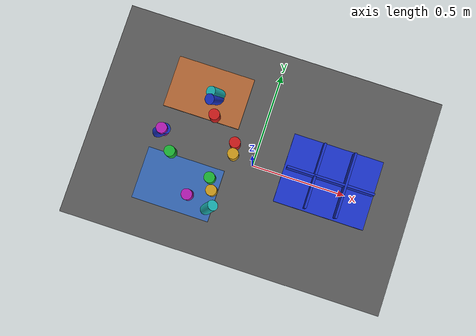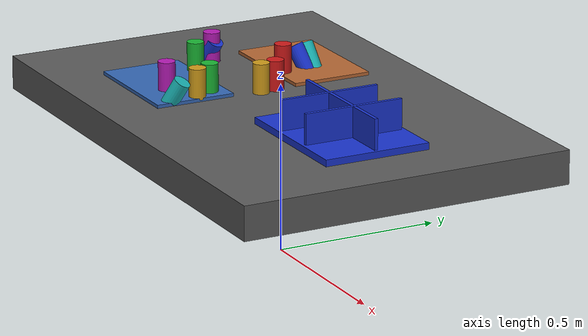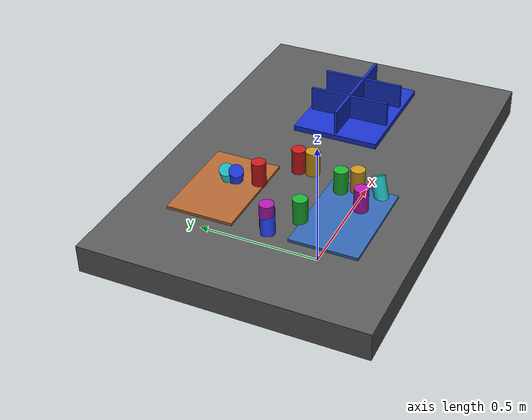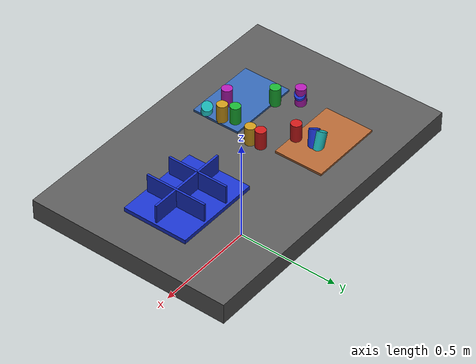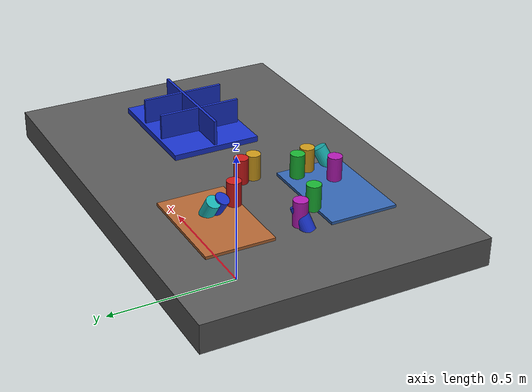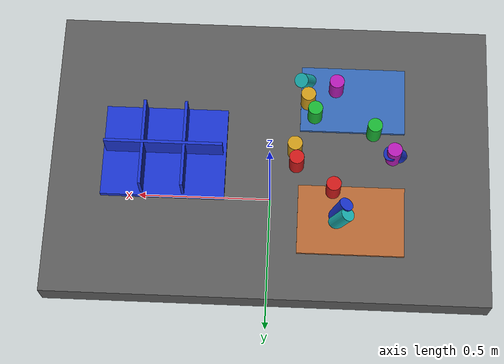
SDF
<?xml version="1.0" ?>
<sdf version="1.9">
  <!-- Standalone M1B scene.  The controller-backed Panda is spawned by the
       existing launch path; this file never alters the frozen M1A cube world. -->
  <world name="industrial_cylinder_v1">
    <physics name="bullet" type="bullet"><max_step_size>0.001</max_step_size><real_time_factor>1.0</real_time_factor></physics>
    <plugin name="gz::sim::systems::Physics" filename="gz-sim-physics-system"><engine><filename>gz-physics-bullet-featherstone-plugin</filename></engine></plugin>
    <plugin name="gz::sim::systems::UserCommands" filename="gz-sim-user-commands-system"/>
    <plugin name="gz::sim::systems::SceneBroadcaster" filename="gz-sim-scene-broadcaster-system"/>
    <plugin name="gz::sim::systems::Sensors" filename="gz-sim-sensors-system"><render_engine>ogre2</render_engine></plugin>
    <gravity>0 0 -9.81</gravity>
    <light type="directional" name="industrial_light"><pose>0 0 5 0 0 0</pose><direction>-0.3 0.2 -0.9</direction><diffuse>0.9 0.9 0.9 1</diffuse></light>
    <model name="industrial_work_table"><static>true</static><link name="link"><pose>0 0 0.4 0 0 0</pose><collision name="collision"><geometry><box><size>1.5 1.0 0.1</size></box></geometry></collision><visual name="visual"><geometry><box><size>1.5 1.0 0.1</size></box></geometry><material><diffuse>0.35 0.35 0.35 1</diffuse></material></visual></link></model>
    <model name="camera_fixture"><static>true</static><link name="camera_rgbd"><pose>-0.80 -0.80 1.40 0 0.77 0.93</pose><sensor name="front_rgbd" type="rgbd_camera"><always_on>1</always_on><update_rate>15</update_rate><topic>/xh/camera/rgbd</topic><camera><horizontal_fov>1.047</horizontal_fov><image><width>640</width><height>480</height><format>R8G8B8</format></image><clip><near>0.1</near><far>4.0</far></clip></camera></sensor></link></model>
    <model name="incoming_zone_a"><static>true</static><link name="link"><pose>-0.28 -0.22 0.455 0 0 0</pose><visual name="visual"><geometry><box><size>0.36 0.24 0.01</size></box></geometry><material><diffuse>0.2 0.4 0.7 1</diffuse></material></visual></link></model>
    <model name="incoming_zone_b"><static>true</static><link name="link"><pose>-0.28 0.22 0.455 0 0 0</pose><visual name="visual"><geometry><box><size>0.36 0.24 0.01</size></box></geometry><material><diffuse>0.7 0.4 0.2 1</diffuse></material></visual></link></model>
    <!-- M1B_RANDOM_PARTS_BEGIN -->
    <model name="cylinder_01"><pose>-0.0912 0.0299 0.5000 0.0000 0.0000 -0.5629</pose><link name="link"><inertial><mass>0.06</mass></inertial><collision name="collision"><geometry><cylinder><radius>0.025</radius><length>0.09</length></cylinder></geometry></collision><visual name="visual"><geometry><cylinder><radius>0.025</radius><length>0.09</length></cylinder></geometry><material><diffuse>0.800 0.100 0.100 1</diffuse><specular>0.15 0.15 0.15 1</specular></material></visual></link></model>
    <model name="cylinder_02"><pose>-0.1491 -0.1511 0.5000 3.1416 0.0000 -0.4807</pose><link name="link"><inertial><mass>0.06</mass></inertial><collision name="collision"><geometry><cylinder><radius>0.025</radius><length>0.09</length></cylinder></geometry></collision><visual name="visual"><geometry><cylinder><radius>0.025</radius><length>0.09</length></cylinder></geometry><material><diffuse>0.100 0.700 0.200 1</diffuse><specular>0.15 0.15 0.15 1</specular></material></visual></link></model>
    <model name="cylinder_03"><pose>-0.4268 -0.0141 0.4800 0.4500 -0.3000 2.5755</pose><link name="link"><inertial><mass>0.06</mass></inertial><collision name="collision"><geometry><cylinder><radius>0.025</radius><length>0.09</length></cylinder></geometry></collision><visual name="visual"><geometry><cylinder><radius>0.025</radius><length>0.09</length></cylinder></geometry><material><diffuse>0.100 0.200 0.800 1</diffuse><specular>0.15 0.15 0.15 1</specular></material></visual></link></model>
    <model name="cylinder_04"><pose>-0.0838 -0.0196 0.5000 0.0000 0.0000 2.5295</pose><link name="link"><inertial><mass>0.06</mass></inertial><collision name="collision"><geometry><cylinder><radius>0.025</radius><length>0.09</length></cylinder></geometry></collision><visual name="visual"><geometry><cylinder><radius>0.025</radius><length>0.09</length></cylinder></geometry><material><diffuse>0.800 0.600 0.100 1</diffuse><specular>0.15 0.15 0.15 1</specular></material></visual></link></model>
    <model name="cylinder_05"><pose>-0.2203 -0.2524 0.5000 3.1416 0.0000 1.6403</pose><link name="link"><inertial><mass>0.06</mass></inertial><collision name="collision"><geometry><cylinder><radius>0.025</radius><length>0.09</length></cylinder></geometry></collision><visual name="visual"><geometry><cylinder><radius>0.025</radius><length>0.09</length></cylinder></geometry><material><diffuse>0.700 0.100 0.700 1</diffuse><specular>0.15 0.15 0.15 1</specular></material></visual></link></model>
    <model name="cylinder_06"><pose>-0.1145 -0.2785 0.4800 0.4500 -0.3000 2.8645</pose><link name="link"><inertial><mass>0.06</mass></inertial><collision name="collision"><geometry><cylinder><radius>0.025</radius><length>0.09</length></cylinder></geometry></collision><visual name="visual"><geometry><cylinder><radius>0.025</radius><length>0.09</length></cylinder></geometry><material><diffuse>0.100 0.700 0.700 1</diffuse><specular>0.15 0.15 0.15 1</specular></material></visual></link></model>
    <model name="cylinder_07"><pose>-0.2174 0.1203 0.5000 0.0000 0.0000 -2.8929</pose><link name="link"><inertial><mass>0.06</mass></inertial><collision name="collision"><geometry><cylinder><radius>0.025</radius><length>0.09</length></cylinder></geometry></collision><visual name="visual"><geometry><cylinder><radius>0.025</radius><length>0.09</length></cylinder></geometry><material><diffuse>0.800 0.100 0.100 1</diffuse><specular>0.15 0.15 0.15 1</specular></material></visual></link></model>
    <model name="cylinder_08"><pose>-0.3528 -0.0950 0.5000 3.1416 0.0000 3.1114</pose><link name="link"><inertial><mass>0.06</mass></inertial><collision name="collision"><geometry><cylinder><radius>0.025</radius><length>0.09</length></cylinder></geometry></collision><visual name="visual"><geometry><cylinder><radius>0.025</radius><length>0.09</length></cylinder></geometry><material><diffuse>0.100 0.700 0.200 1</diffuse><specular>0.15 0.15 0.15 1</specular></material></visual></link></model>
    <model name="cylinder_09"><pose>-0.2424 0.1951 0.4800 0.4500 -0.3000 -0.4535</pose><link name="link"><inertial><mass>0.06</mass></inertial><collision name="collision"><geometry><cylinder><radius>0.025</radius><length>0.09</length></cylinder></geometry></collision><visual name="visual"><geometry><cylinder><radius>0.025</radius><length>0.09</length></cylinder></geometry><material><diffuse>0.100 0.200 0.800 1</diffuse><specular>0.15 0.15 0.15 1</specular></material></visual></link></model>
    <model name="cylinder_10"><pose>-0.1241 -0.2023 0.5000 0.0000 0.0000 0.7217</pose><link name="link"><inertial><mass>0.06</mass></inertial><collision name="collision"><geometry><cylinder><radius>0.025</radius><length>0.09</length></cylinder></geometry></collision><visual name="visual"><geometry><cylinder><radius>0.025</radius><length>0.09</length></cylinder></geometry><material><diffuse>0.800 0.600 0.100 1</diffuse><specular>0.15 0.15 0.15 1</specular></material></visual></link></model>
    <model name="cylinder_11"><pose>-0.4199 -0.0084 0.5000 3.1416 0.0000 -0.0477</pose><link name="link"><inertial><mass>0.06</mass></inertial><collision name="collision"><geometry><cylinder><radius>0.025</radius><length>0.09</length></cylinder></geometry></collision><visual name="visual"><geometry><cylinder><radius>0.025</radius><length>0.09</length></cylinder></geometry><material><diffuse>0.700 0.100 0.700 1</diffuse><specular>0.15 0.15 0.15 1</specular></material></visual></link></model>
    <model name="cylinder_12"><pose>-0.2449 0.2228 0.4800 0.4500 -0.3000 -0.7906</pose><link name="link"><inertial><mass>0.06</mass></inertial><collision name="collision"><geometry><cylinder><radius>0.025</radius><length>0.09</length></cylinder></geometry></collision><visual name="visual"><geometry><cylinder><radius>0.025</radius><length>0.09</length></cylinder></geometry><material><diffuse>0.100 0.700 0.700 1</diffuse><specular>0.15 0.15 0.15 1</specular></material></visual></link></model>
    <!-- M1B_RANDOM_PARTS_END -->
    <model name="blue_partition_bin"><static>true</static><pose>0.36 0 0.45 0 0 0</pose><link name="link"><collision name="floor"><pose>0 0 0.01 0 0 0</pose><geometry><box><size>0.42 0.32 0.02</size></box></geometry></collision><visual name="floor_visual"><pose>0 0 0.01 0 0 0</pose><geometry><box><size>0.42 0.32 0.02</size></box></geometry><material><diffuse>0.1 0.2 0.8 1</diffuse></material></visual><visual name="row_divider"><pose>0 0 0.06 0 0 0</pose><geometry><box><size>0.40 0.01 0.10</size></box></geometry><material><diffuse>0.1 0.2 0.8 1</diffuse></material></visual><visual name="col_divider_a"><pose>-0.07 0 0.06 0 0 0</pose><geometry><box><size>0.01 0.30 0.10</size></box></geometry><material><diffuse>0.1 0.2 0.8 1</diffuse></material></visual><visual name="col_divider_b"><pose>0.07 0 0.06 0 0 0</pose><geometry><box><size>0.01 0.30 0.10</size></box></geometry><material><diffuse>0.1 0.2 0.8 1</diffuse></material></visual></link></model>
    <!-- Reserved only: second table, bin transport corridor, stackable-bin
         collision volume, and second arm mounting namespace. -->
  </world>
</sdf>
